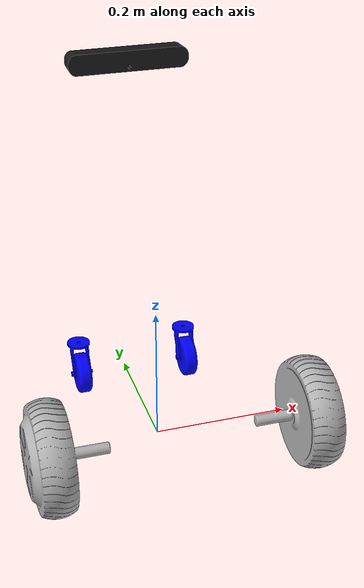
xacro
<?xml version="1.0" ?>
<robot name="engix" xmlns:xacro="http://www.ros.org/wiki/xacro">

<xacro:include filename="$(find engix_description)/urdf/materials.xacro" />
<xacro:include filename="$(find engix_description)/urdf/engix.trans" />
<xacro:include filename="$(find engix_description)/urdf/engix.gazebo" />
  <link name="base_footprint"/>

<joint name="base_joint" type="fixed">

  <origin xyz="0 0 0.0102" rpy="0 0 0" />
  <parent link="base_footprint"/>
  <child link="base_link" />
</joint>
<link name="base_link">
  <inertial>
    <origin rpy="0 0 0" xyz="0.0025382796108358186 -0.004258964769025257 0.20035127231060307"/>
    <mass value="18.77550264921881"/>
    <inertia ixx="0.403326" ixy="-0.002814" ixz="-0.002231" iyy="0.251753" iyz="-0.005709" izz="0.321646"/>
  </inertial>
  <visual>
    <origin rpy="0 0 0" xyz="0 0 0"/>
    <geometry>
      <mesh filename="package://engix_description/meshes/base_link.stl" scale="0.001 0.001 0.001"/>
    </geometry>
    <material name="silver_default"/>
  </visual>
  <collision>
    <origin rpy="0 0 0" xyz="0 0 0"/>
    <geometry>
      <mesh filename="package://engix_description/meshes/base_link.stl" scale="0.001 0.001 0.001"/>
    </geometry>
  </collision>
</link>

<link name="left_wheel">
  <inertial>
    <origin rpy="0 0 0" xyz="-0.03585495907153588 5.607161351894874e-08 7.24121555087387e-06"/>
    <mass value="0.9580193019383823"/>
    <inertia ixx="0.002703" ixy="0.0" ixz="-0.0" iyy="0.001585" iyz="0.0" izz="0.001585"/>
  </inertial>
  <visual>
    <origin rpy="0 0 0" xyz="0.148896 0.1355 -0.079162"/>
    <geometry>
      <mesh filename="package://engix_description/meshes/left_wheel.stl" scale="0.001 0.001 0.001"/>
    </geometry>
    <material name="silver_default"/>
  </visual>
  <collision>
    <origin rpy="0 0 0" xyz="0.148896 0.1355 -0.079162"/>
    <geometry>
      <mesh filename="package://engix_description/meshes/left_wheel.stl" scale="0.001 0.001 0.001"/>
    </geometry>
  </collision>
</link>

<link name="right_wheel">
  <inertial>
    <origin rpy="0 0 0" xyz="0.03585359188757131 -1.4858674346474032e-08 6.622358018945618e-06"/>
    <mass value="0.9580297510218192"/>
    <inertia ixx="0.002703" ixy="0.0" ixz="0.0" iyy="0.001585" iyz="0.0" izz="0.001585"/>
  </inertial>
  <visual>
    <origin rpy="0 0 0" xyz="-0.148104 0.1355 -0.079162"/>
    <geometry>
      <mesh filename="package://engix_description/meshes/right_wheel.stl" scale="0.001 0.001 0.001"/>
    </geometry>
    <material name="silver_default"/>
  </visual>
  <collision>
    <origin rpy="0 0 0" xyz="-0.148104 0.1355 -0.079162"/>
    <geometry>
      <mesh filename="package://engix_description/meshes/right_wheel.stl" scale="0.001 0.001 0.001"/>
    </geometry>
  </collision>
</link>

<link name="ZED2">
  <inertial>
    <origin rpy="0 0 0" xyz="0.018001157946504642 -0.0005814546180888114 0.014361531099989666"/>
    <mass value="1.195261039361359"/>
    <inertia ixx="0.000179" ixy="-0.0" ixz="0.0" iyy="0.002923" iyz="0.0" izz="0.002942"/>
  </inertial>
  <visual>
    <origin rpy="0 0 0" xyz="0.008 -0.1745 -0.4957"/>
    <geometry>
      <mesh filename="package://engix_description/meshes/ZED2.stl" scale="0.001 0.001 0.001"/>
    </geometry>
    <material name="black"/>
  </visual>
  <collision>
    <origin rpy="0 0 0" xyz="0.008 -0.1745 -0.4957"/>
    <geometry>
      <mesh filename="package://engix_description/meshes/ZED2.stl" scale="0.001 0.001 0.001"/>
    </geometry>
  </collision>
</link>

<link name="right_caster">
  <inertial>
    <origin rpy="0 0 0" xyz="0.0006707901011975964 -0.010531204780533182 -0.03289263884489594"/>
    <mass value="0.11890962334404172"/>
    <inertia ixx="7.8e-05" ixy="0.0" ixz="0.0" iyy="6.3e-05" iyz="-1.5e-05" izz="3.2e-05"/>
  </inertial>
  <visual>
    <origin rpy="0 0 0" xyz="-0.086753 -0.15332 -0.072019"/>
    <geometry>
      <mesh filename="package://engix_description/meshes/right_caster.stl" scale="0.001 0.001 0.001"/>
    </geometry>
    <material name="blues"/>
  </visual>
  <collision>
    <origin rpy="0 0 0" xyz="-0.086753 -0.15332 -0.072019"/>
    <geometry>
      <mesh filename="package://engix_description/meshes/right_caster.stl" scale="0.001 0.001 0.001"/>
    </geometry>
  </collision>
</link>

<link name="left_caster">
  <inertial>
    <origin rpy="0 0 0" xyz="0.0006707901011974993 -0.010531189107599204 -0.03289315182415704"/>
    <mass value="0.11890962334404165"/>
    <inertia ixx="7.8e-05" ixy="0.0" ixz="0.0" iyy="6.3e-05" iyz="-1.5e-05" izz="3.2e-05"/>
  </inertial>
  <visual>
    <origin rpy="0 0 0" xyz="0.083247 -0.15332 -0.071999"/>
    <geometry>
      <mesh filename="package://engix_description/meshes/left_caster.stl" scale="0.001 0.001 0.001"/>
    </geometry>
    <material name="blues"/>
  </visual>
  <collision>
    <origin rpy="0 0 0" xyz="0.083247 -0.15332 -0.071999"/>
    <geometry>
      <mesh filename="package://engix_description/meshes/left_caster.stl" scale="0.001 0.001 0.001"/>
    </geometry>
  </collision>
</link>

<joint name="left_wheel_joint" type="continuous">
  <origin rpy="0 0 0" xyz="-0.148896 -0.1355 0.079162"/>
  <parent link="base_link"/>
  <child link="left_wheel"/>
  <axis xyz="-1.0 -0.0 -0.0"/>
</joint>

<joint name="right_wheel_joint" type="continuous">
  <origin rpy="0 0 0" xyz="0.148104 -0.1355 0.079162"/>
  <parent link="base_link"/>
  <child link="right_wheel"/>
  <axis xyz="-1.0 -0.0 -0.0"/>
</joint>

<joint name="zed" type="fixed">
  <origin rpy="0 0 0" xyz="-0.008 0.1745 0.4957"/>
  <parent link="base_link"/>
  <child link="ZED2"/>
</joint>

<joint name="right_caster_joint" type="continuous">
  <origin rpy="0 0 0" xyz="0.086753 0.15332 0.072019"/>
  <parent link="base_link"/>
  <child link="right_caster"/>
  <axis xyz="-0.0 0.0 1.0"/>
</joint>

<joint name="left_caster_joint" type="continuous">
  <origin rpy="0 0 0" xyz="-0.083247 0.15332 0.071999"/>
  <parent link="base_link"/>
  <child link="left_caster"/>
  <axis xyz="0.0 0.0 -1.0"/>
</joint>

</robot>

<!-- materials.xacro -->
<robot name="engix" xmlns:xacro="http://www.ros.org/wiki/xacro" >

<material name="silver_default">
  <color rgba="0.700 0.700 0.700 1.000"/>
</material>

<material name="blues">
  <color rgba="0.0 0.0 1.0 1"/>
</material>

 <material name="black">
  <color rgba="0.1 0.1 0.1 1"/>
</material>

</robot>

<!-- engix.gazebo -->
<robot name="engix" xmlns:xacro="http://www.ros.org/wiki/xacro" >

<xacro:property name="body_color" value="Gazebo/Silver" />

<gazebo>
  <plugin name="differential_drive_controller" filename="libgazebo_ros_diff_drive.so">
    <legacyMode>false</legacyMode>
    <alwaysOn>true</alwaysOn>
    <publishWheelTF>true</publishWheelTF>
    <publishTf>1</publishTf>
    <publishWheelJointState>true</publishWheelJointState>
    <updateRate>100.0</updateRate>
    <leftJoint>left_wheel_joint</leftJoint>
    <rightJoint>right_wheel_joint</rightJoint>
    <wheelSeparation>0.4</wheelSeparation>
    <wheelDiameter>0.52</wheelDiameter>
    <wheelAcceleration>1.0</wheelAcceleration>
    <torque>20</torque>
    <commandTopic>/part2_cmr/cmd_vel</commandTopic>
    <odometryTopic>odom</odometryTopic>
    <odometryFrame>odom</odometryFrame>
    <robotBaseFrame>base_link</robotBaseFrame>
  </plugin>
</gazebo>
<gazebo reference="base_link">
  <material>${body_color}</material>
  <mu1>0.2</mu1>
  <mu2>0.2</mu2>
  <selfCollide>true</selfCollide>
  <gravity>true</gravity>
</gazebo>

<gazebo reference="left_wheel">
  <material>${body_color}</material>
  <mu1>0.2</mu1>
  <mu2>0.2</mu2>
  <selfCollide>true</selfCollide>
</gazebo>

<gazebo reference="right_wheel">
  <material>${body_color}</material>
  <mu1>0.2</mu1>
  <mu2>0.2</mu2>
  <selfCollide>true</selfCollide>
</gazebo>

<gazebo reference="ZED2">
  <material>black</material>
  <mu1>0.2</mu1>
  <mu2>0.2</mu2>
  <selfCollide>true</selfCollide>
</gazebo>

<gazebo reference="right_caster">
  <material>${body_color}</material>
  <mu1>0.2</mu1>
  <mu2>0.2</mu2>
  <selfCollide>true</selfCollide>
</gazebo>

<gazebo reference="left_caster">
  <material>${body_color}</material>
  <mu1>0.2</mu1>
  <mu2>0.2</mu2>
  <selfCollide>true</selfCollide>
</gazebo>

</robot>
